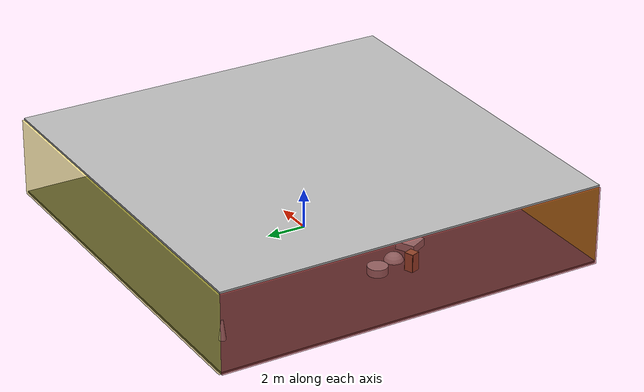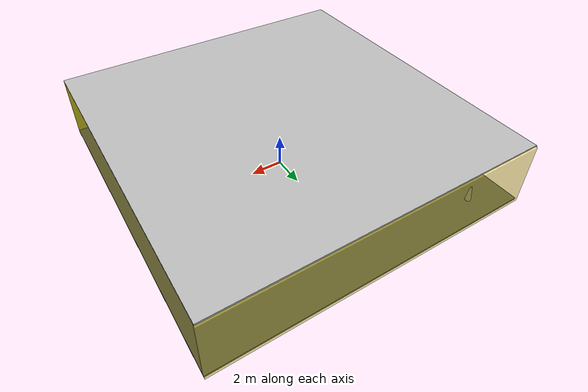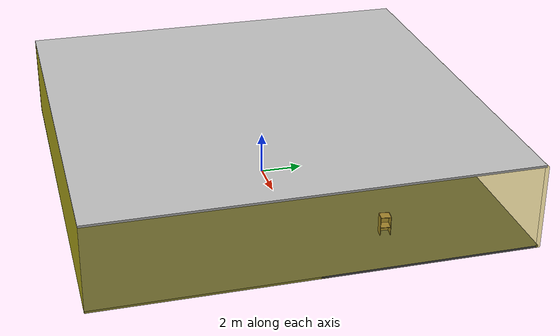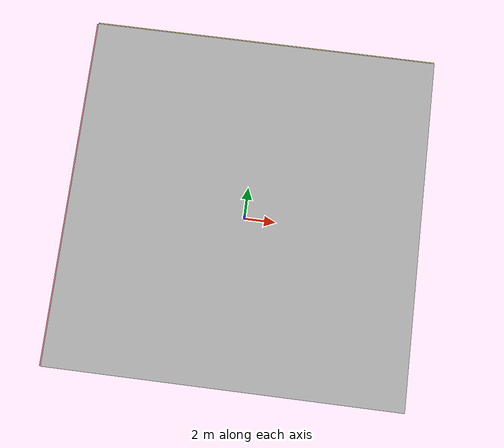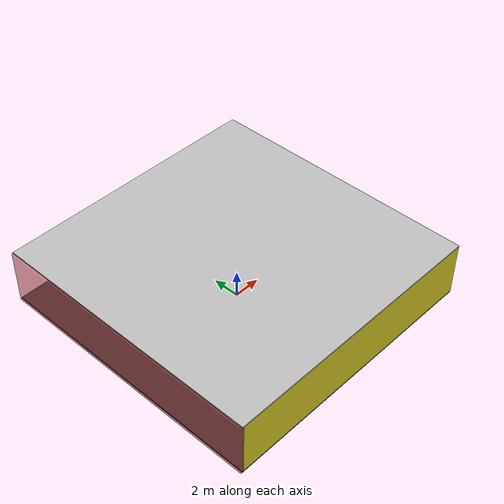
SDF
<sdf version="1.4">
 <world name="default">
  <physics type="ode">
   <max_step_size>0.001</max_step_size>
   <real_time_factor>1</real_time_factor>
   <real_time_update_rate>1000</real_time_update_rate>
   <gravity>0 0 -9.8</gravity>
  </physics>
  <scene><ambient>0.4 0.4 0.4 1</ambient><background>0.7 0.7 0.7 1</background><shadows>1</shadows></scene>
  <model name="Surrounding">
   <static>1</static>
   <link name="Ceiling">
    <collision name="Ceiling_Collision"><geometry><box><size>20 20 0.1</size></box></geometry></collision>
    <visual name="Ceiling_Visual">
     <geometry><box><size>20 20 0.1</size></box></geometry>
     <material>
      <script><uri>file://media/materials/scripts/gazebo.material</uri><name>Gazebo/Pioneer2Body</name></script>
     </material>
    </visual>
    <pose>0 0 4.05 0 0 0</pose>
   </link>
   <link name="Wall_South">
    <collision name="Wall_South_Collision">
     <geometry><box><size>20 0 4</size></box></geometry>
     <pose>0 0 2 0 -0 0</pose>
    </collision>
    <visual name="Wall_South_Visual">
     <pose>0 0 2 0 -0 0</pose>
     <geometry><box><size>20 0 4</size></box></geometry>
     <material>
      <script><uri>file://media/materials/scripts/gazebo.material</uri><name>Gazebo/Yellow</name></script>
     </material>
    </visual>
    <velocity_decay><linear>0</linear><angular>0</angular></velocity_decay>
    <pose>0 -10 0 0 -0 0</pose>
   </link>
   <link name="Wall_East">
    <collision name="Wall_21_Collision">
     <geometry><box><size>20 0 4</size></box></geometry>
     <pose>0 0 2 0 -0 0</pose>
    </collision>
    <visual name="Wall_21_Visual">
     <pose>0 0 2 0 -0 0</pose>
     <geometry><box><size>20 0 4</size></box></geometry>
     <material>
      <script>
       <uri>file://media/materials/scripts/gazebo.material</uri>
       <name>Gazebo/YellowTransparent</name>
      </script>
     </material>
    </visual>
    <velocity_decay><linear>0</linear><angular>0</angular></velocity_decay>
    <pose>10 0 0 0 -0 1.5708</pose>
   </link>
   <link name="Wall_North">
    <collision name="Wall_22_Collision">
     <geometry><box><size>20 0.2 4</size></box></geometry>
     <pose>0 0 2 0 -0 0</pose>
    </collision>
    <visual name="Wall_22_Visual">
     <pose>0 0 2 0 -0 0</pose>
     <geometry><box><size>20 0.2 4</size></box></geometry>
     <material>
      <script>
       <uri>file://media/materials/scripts/gazebo.material</uri>
       <name>Gazebo/YellowTransparent</name>
      </script>
     </material>
    </visual>
    <velocity_decay><linear>0</linear><angular>0</angular></velocity_decay>
    <pose>0 10 0 0 -0 0</pose>
   </link>
   <link name="Wall_West">
    <collision name="Wall_23_Collision">
     <geometry><box><size>20 0.2 4</size></box></geometry>
     <pose>0 0 2 0 -0 0</pose>
    </collision>
    <visual name="Wall_23_Visual">
     <pose>0 0 2 0 -0 0</pose>
     <geometry><box><size>20 0.2 4</size></box></geometry>
     <material>
      <script><uri>file://media/materials/scripts/gazebo.material</uri><name>Gazebo/RedTransparent</name></script>
     </material>
    </visual>
    <velocity_decay><linear>0</linear><angular>0</angular></velocity_decay>
    <pose>-10 0 0 0 0 -1.5708</pose>
   </link>
   <link name="Ground_link">
    <collision name="collision">
     <pose>0 0 .05 0 -0 0</pose>
     <geometry><box><size>20 20 0.1</size></box></geometry>
    </collision>
    <visual name="visual">
     <pose>0 0 .05 0 -0 0</pose>
     <geometry><box><size>20 20 0.1</size></box></geometry>
     <material>
      <script><uri>file://media/materials/scripts/gazebo.material</uri><name>Gazebo/Road</name></script>
     </material>
    </visual>
   </link>
   <static>1</static>
  </model>
  <spherical_coordinates>
   <surface_model>EARTH_WGS84</surface_model>
   <latitude_deg>0</latitude_deg>
   <longitude_deg>0</longitude_deg>
   <elevation>0</elevation>
   <heading_deg>0</heading_deg>
  </spherical_coordinates>
  <light name="lightball_0" type="diffuse">
   <diffuse>0.8 0.8 0.8 1</diffuse>
   <specular>0.2 0.2 0.2 1</specular>
   <attenuation>
    <range>100</range>
    <constant>0.7</constant>
    <linear>0.01</linear>
    <quadratic>0.001</quadratic>
   </attenuation>
   <direction>-0.5 0.1 -0.9</direction>
   <pose>-9.88543335299 -7.38515076244 2.38038142159 0 0 0</pose>
  </light>
  <light name="lightball_1" type="diffuse">
   <diffuse>0.8 0.8 0.8 1</diffuse>
   <specular>0.2 0.2 0.2 1</specular>
   <attenuation>
    <range>100</range>
    <constant>0.7</constant>
    <linear>0.01</linear>
    <quadratic>0.001</quadratic>
   </attenuation>
   <direction>-0.5 0.1 -0.9</direction>
   <pose>-3.95645666909 -8.18986950287 2.94664208069 0 0 0</pose>
  </light>
  <light name="lightball_2" type="diffuse">
   <diffuse>0.8 0.8 0.8 1</diffuse>
   <specular>0.2 0.2 0.2 1</specular>
   <attenuation>
    <range>100</range>
    <constant>0.7</constant>
    <linear>0.01</linear>
    <quadratic>0.001</quadratic>
   </attenuation>
   <direction>-0.5 0.1 -0.9</direction>
   <pose>-2.49191265159 9.6148698659 1.65406809233 0 0 0</pose>
  </light>
  <light name="lightball_3" type="diffuse">
   <diffuse>0.8 0.8 0.8 1</diffuse>
   <specular>0.2 0.2 0.2 1</specular>
   <attenuation>
    <range>100</range>
    <constant>0.7</constant>
    <linear>0.01</linear>
    <quadratic>0.001</quadratic>
   </attenuation>
   <direction>-0.5 0.1 -0.9</direction>
   <pose>-5.87091449177 8.14556811576 1.66821066923 0 0 0</pose>
  </light>
  <light name="lightball_4" type="diffuse">
   <diffuse>0.8 0.8 0.8 1</diffuse>
   <specular>0.2 0.2 0.2 1</specular>
   <attenuation>
    <range>100</range>
    <constant>0.7</constant>
    <linear>0.01</linear>
    <quadratic>0.001</quadratic>
   </attenuation>
   <direction>-0.5 0.1 -0.9</direction>
   <pose>4.6937830681 2.79035737051 3.6589845662 0 0 0</pose>
  </light>
  <light name="lightball_5" type="diffuse">
   <diffuse>0.8 0.8 0.8 1</diffuse>
   <specular>0.2 0.2 0.2 1</specular>
   <attenuation>
    <range>100</range>
    <constant>0.7</constant>
    <linear>0.01</linear>
    <quadratic>0.001</quadratic>
   </attenuation>
   <direction>-0.5 0.1 -0.9</direction>
   <pose>-3.45836048896 7.88525764131 3.49573299199 0 0 0</pose>
  </light>
  <light name="lightball_6" type="diffuse">
   <diffuse>0.8 0.8 0.8 1</diffuse>
   <specular>0.2 0.2 0.2 1</specular>
   <attenuation>
    <range>100</range>
    <constant>0.7</constant>
    <linear>0.01</linear>
    <quadratic>0.001</quadratic>
   </attenuation>
   <direction>-0.5 0.1 -0.9</direction>
   <pose>6.91959141254 1.56794938099 2.51646766425 0 0 0</pose>
  </light>
  <include><uri>model://cabinet</uri><pose>-6.36458282542 -2.09640730821 0 0 0 1.92454566068</pose></include>
  <include>
   <uri>model://construction_cone</uri>
   <pose>-7.55059357039 8.60153927557 0 0 0 0.195882929071</pose>
  </include>
  <include>
   <uri>model://textured_shapes</uri>
   <pose>-5.17677515071 -1.86955759288 0 0 0 0.478031847328</pose>
  </include>
  <include><uri>model://cabinet</uri><pose>7.28996024064 3.78653236273 0 0 0 3.01929494151</pose></include>
 </world>
</sdf>

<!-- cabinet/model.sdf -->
<sdf version="1.5">
  <model name="cabinet">
    <static>true</static>
    <link name="cabinet_bottom_plate">
      <inertial>
        <pose>0 0 -1 0 0 0</pose>
        <inertia>
          <ixx>2.050000</ixx>
          <ixy>0</ixy>
          <ixz>0</ixz>
          <iyy>2.050000</iyy>
          <iyz>0</iyz>
          <izz>2.050000</izz>
        </inertia>
        <mass>25.000000</mass>
      </inertial>
      <collision name="cabinet_bottom_plate_geom">
        <pose>0 0 0.010000 0 0 0</pose>
        <geometry>
          <box>
            <size>0.450000 0.450000 0.020000</size>
          </box>
        </geometry>
      </collision>
      <visual name="cabinet_bottom_plate_geom_visual">
        <pose>0 0 0.010000 0 0 0</pose>
        <geometry>
          <box>
            <size>0.450000 0.450000 0.020000</size>
          </box>
        </geometry>
        <material>
          <script>
            <uri>model://media/materials/scripts/gazebo.material</uri>
            <name>Gazebo/Wood</name>
          </script>
        </material>
      </visual>
      <collision name="cabinet_bottom_plate_geom_cabinet_back_plate">
        <pose>0.235000 0 0.510000 0 0 0</pose>
        <geometry>
          <box>
            <size>0.020000 0.450000 1.020000</size>
          </box>
        </geometry>
      </collision>
      <visual name="cabinet_bottom_plate_geom_cabinet_back_plate_visual">
        <pose>0.235000 0 0.510000 0 0 0</pose>
        <geometry>
          <box>
            <size>0.020000 0.450000 1.020000</size>
          </box>
        </geometry>
        <material>
          <script>
            <uri>model://media/materials/scripts/gazebo.material</uri>
            <name>Gazebo/Wood</name>
          </script>
        </material>
      </visual>
      <collision name="cabinet_bottom_plate_geom_cabinet_left_plate">
        <pose>0 0.235000 0.510000 0 0 0</pose>
        <geometry>
          <box>
            <size>0.450000 0.020000 1.020000</size>
          </box>
        </geometry>
      </collision>
      <visual name="cabinet_bottom_plate_geom_cabinet_left_plate_visual">
        <pose>0 0.235000 0.510000 0 0 0</pose>
        <geometry>
          <box>
            <size>0.450000 0.020000 1.020000</size>
          </box>
        </geometry>
        <material>
          <script>
            <uri>model://media/materials/scripts/gazebo.material</uri>
            <name>Gazebo/Wood</name>
          </script>
        </material>
      </visual>
      <collision name="cabinet_bottom_plate_geom_cabinet_middle_plate">
        <pose>0 0 0.510000 0 0 0</pose>
        <geometry>
          <box>
            <size>0.450000 0.450000 0.020000</size>
          </box>
        </geometry>
      </collision>
      <visual name="cabinet_bottom_plate_geom_cabinet_middle_plate_visual">
        <pose>0 0 0.510000 0 0 0</pose>
        <geometry>
          <box>
            <size>0.450000 0.450000 0.020000</size>
          </box>
        </geometry>
        <material>
          <script>
            <uri>model://media/materials/scripts/gazebo.material</uri>
            <name>Gazebo/Wood</name>
          </script>
        </material>
      </visual>
      <collision name="cabinet_bottom_plate_geom_cabinet_right_plate">
        <pose>0 -0.235000 0.510000 0 0 0</pose>
        <geometry>
          <box>
            <size>0.450000 0.020000 1.020000</size>
          </box>
        </geometry>
      </collision>
      <visual name="cabinet_bottom_plate_geom_cabinet_right_plate_visual">
        <pose>0 -0.235000 0.510000 0 0 0</pose>
        <geometry>
          <box>
            <size>0.450000 0.020000 1.020000</size>
          </box>
        </geometry>
        <material>
          <script>
            <uri>model://media/materials/scripts/gazebo.material</uri>
            <name>Gazebo/Wood</name>
          </script>
        </material>
      </visual>
      <collision name="cabinet_bottom_plate_geom_cabinet_top_plate">
        <pose>0 0 1.010000 0 0 0</pose>
        <geometry>
          <box>
            <size>0.450000 0.450000 0.020000</size>
          </box>
        </geometry>
      </collision>
      <visual name="cabinet_bottom_plate_geom_cabinet_top_plate_visual">
        <pose>0 0 1.010000 0 0 0</pose>
        <geometry>
          <box>
            <size>0.450000 0.450000 0.020000</size>
          </box>
        </geometry>
        <material>
          <script>
            <uri>model://media/materials/scripts/gazebo.material</uri>
            <name>Gazebo/Wood</name>
          </script>
        </material>
      </visual>
    </link>
  </model>
</sdf>

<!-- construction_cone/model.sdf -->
<sdf version="1.5">
  <model name="Construction Cone">
    <link name="link">
      <collision name="collision">
        <geometry>
          <mesh>
            <scale>10 10 10</scale>
            <uri>file://isr-testbed/construction_cone/meshes/construction_cone.dae</uri>
          </mesh>
        </geometry>
      </collision>
      <visual name="visual">
        <geometry>
          <mesh>
            <scale>10 10 10</scale>
            <uri>file://isr-testbed/construction_cone/meshes/construction_cone.dae</uri>
          </mesh>
        </geometry>
      </visual>
    </link>
  </model>
</sdf>

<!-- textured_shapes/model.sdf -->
<sdf version="1.6">
  <model name="textured_shapes">
    <pose>0 0 0.5 0 0 0</pose>
    <link name="box">
      <pose>0 -1.5 0 0 0 0</pose>
      <collision name="collision">
        <geometry>
          <box>
            <size>1 1 1</size>
          </box>
        </geometry>
      </collision>
      <visual name="visual">
        <geometry>
          <box>
            <size>1 1 1</size>
          </box>
        </geometry>
        <material>
          <script>
            <uri>model://../model_source/models/textured_shapes/materials/scripts</uri>
            <uri>model://../model_source/models/textured_shapes/materials/textures</uri>
            <name>TexturedShape/Squares</name>
          </script>
        </material>
      </visual>
    </link>
    <link name="sphere">
      <collision name="collision">
        <geometry>
          <sphere>
            <radius>0.5</radius>
          </sphere>
        </geometry>
      </collision>
      <visual name="visual">
        <geometry>
          <sphere>
            <radius>0.5</radius>
          </sphere>
        </geometry>
        <material>
          <script>
            <uri>model://../model_source/models/textured_shapes/materials/scripts</uri>
            <uri>model://../model_source/models/textured_shapes/materials/textures</uri>
            <name>TexturedShape/Squares</name>
          </script>
        </material>
      </visual>
    </link>
    <link name="cylinder">
      <pose>0 1.5 0 0 0 0</pose>
      <collision name="collision">
        <geometry>
          <cylinder>
            <radius>0.5</radius>
            <length>1</length>
          </cylinder>
        </geometry>
      </collision>
      <visual name="visual">
        <geometry>
          <cylinder>
            <radius>0.5</radius>
            <length>1</length>
          </cylinder>
        </geometry>
        <material>
          <script>
            <uri>model://../model_source/models/textured_shapes/materials/scripts</uri>
            <uri>model://../model_source/models/textured_shapes/materials/textures</uri>
            <name>TexturedShape/Squares</name>
          </script>
        </material>
      </visual>
    </link>
  </model>
</sdf>
